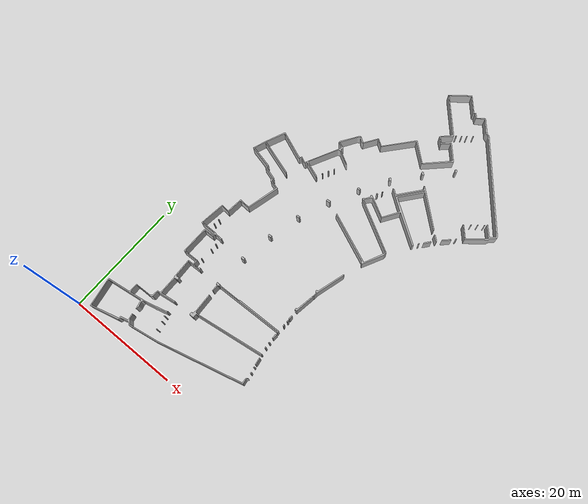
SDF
<?xml version='1.0'?>
<sdf version='1.6'>
  <model name='cic'>
    <static>true</static>
      <link name="pbr_cic_link">
        <pose>0 0 0 0 0 0</pose>
        <collision name="pbr_cic_collision">
          <geometry>
            <mesh>
              <uri>model://pbr_gazebo/models/cic/meshes/pbr_cic.stl</uri>
              <scale>1.0 1.0 1.0</scale>
            </mesh>
          </geometry>
        </collision>
        <visual name="pbr_cic_visual">
          <cast_shadows>false</cast_shadows>
          <geometry>
            <mesh>
              <uri>model://pbr_gazebo/models/cic/meshes/pbr_cic.stl</uri>
              <scale>1.0 1.0 1.0</scale>
            </mesh>
          </geometry>
          <material> <!-- Gazebo/Grey -->
            <ambient>1 1 1 1</ambient>
            <diffuse>0.7 0.7 0.7 1</diffuse>
            <specular>0.01 0.01 0.01 1</specular>
          </material>
        </visual>
      </link>
  </model>
</sdf>
